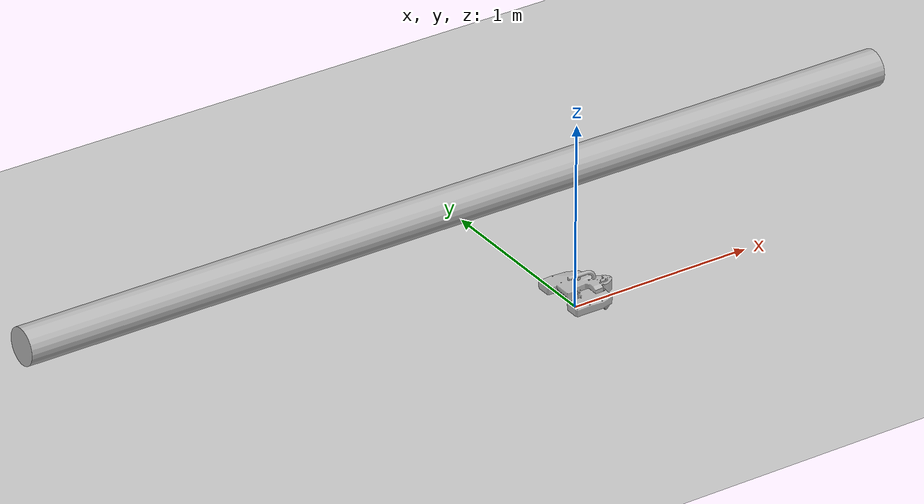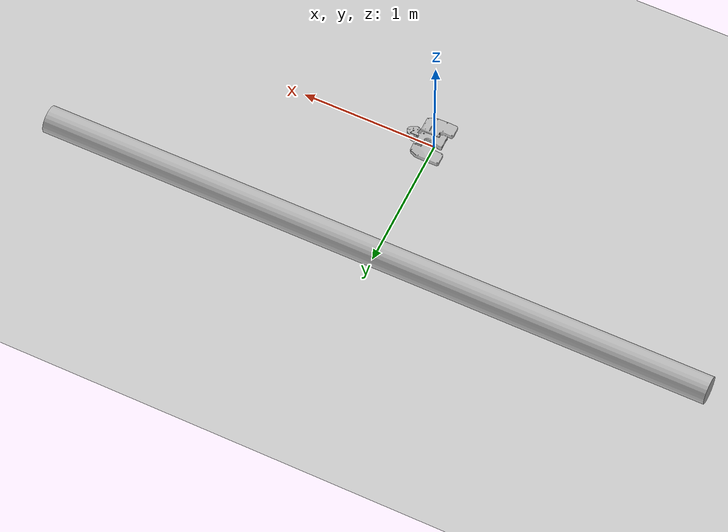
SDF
<?xml version="1.0" ?>
<sdf version="1.5">
  <world name="default">
    <include>
      <uri>model://ground_plane</uri>
    </include>
    <include>
      <uri>model://sun</uri>
    </include>
    <include>
      <uri>model://Crawler</uri>
    </include>
    <include>
      <uri>model://Pipe</uri>
    </include>
  </world>
</sdf>

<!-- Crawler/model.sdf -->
<sdf version='1.4'>
    <model name="crawler">

        <plugin name="gz_crawler_plugin" filename="libcrawler_plugin.so"/>
        <static>false</static>
        <link name='chassis'>
            <pose>0 0 .1 0 0 0</pose>

            <sensor type="camera" name="camera1">
                <pose>0.1 0 0.15 0 0 0</pose>
                <update_rate>5.0</update_rate>
                <camera name="head">
                    <horizontal_fov>1.3962634</horizontal_fov>
                    <image>
                        <width>256</width>
                        <height>256</height>
                        <format>R8G8B8</format>
                    </image>
                    <clip>
                        <near>0.02</near>
                        <far>300</far>
                    </clip>
                    <noise>
                        <type>gaussian</type>
                        <!-- Noise is sampled independently per pixel on each frame.  That pixel's noise value is added to each of its color channels, which at that point lie in the range [0,1]. -->
                        <mean>0.0</mean>
                        <stddev>0.007</stddev>
                    </noise>
                </camera>
                <plugin name="camera_controller" filename="libgazebo_ros_camera.so">
                    <alwaysOn>true</alwaysOn>
                    <updateRate>5.0</updateRate>
                    <robotNamespace></robotNamespace>
                    <cameraName>camera1</cameraName>
                    <imageTopicName>image_raw</imageTopicName>
                    <cameraInfoTopicName>camera_info</cameraInfoTopicName>
                    <frameName>camera_link</frameName>
                    <hackBaseline>0.07</hackBaseline>
                    <distortionK1>0.0</distortionK1>
                    <distortionK2>0.0</distortionK2>
                    <distortionK3>0.0</distortionK3>
                    <distortionT1>0.0</distortionT1>
                    <distortionT2>0.0</distortionT2>
                </plugin>
            </sensor>
            <sensor name="imu_sensor" type="imu">
                <always_on>true</always_on>
                <update_rate>20</update_rate>
                <visualize>true</visualize>
                <topic>__default_topic__</topic>
                <plugin filename="libgazebo_ros_imu_sensor.so" name="imu_plugin">
                    <topicName>imu</topicName>
                    <bodyName>chassis</bodyName>
                    <updateRateHZ>10.0</updateRateHZ>
                    <gaussianNoise>0.0</gaussianNoise>
                    <xyzOffset>0 0 0</xyzOffset>
                    <rpyOffset>0 0 0</rpyOffset>
                    <frameName>chassis</frameName>
                </plugin>
                <pose>0 0 0 0 0 0</pose>
            </sensor>
            <inertial>
                <mass>2.5</mass>
                <inertia>
                    <ixx>10.0</ixx>
                    <ixy>0</ixy>
                    <ixz>0</ixz>
                    <iyy>10.0</iyy>
                    <iyz>0</iyz>
                    <izz>2.5</izz>
                </inertia>
            </inertial>
            <collision name='collision'>
                <geometry>
                    <box>
                        <size>.3 .2 .1</size>
                    </box>
                </geometry>
            </collision>

            <visual name="visual">
                <pose>0.05 0 0  -1.5707 0 -1.5707</pose>
                <geometry>
                    <mesh>
                        <uri>model://Crawler/Altiscan2t.dae</uri>
                    </mesh>
                </geometry>
            </visual>

            <collision name='caster_collision'>
                <pose>-0.15 0 -0.05 0 0 0</pose>
                <geometry>
                    <sphere>
                        <radius>.05</radius>
                    </sphere>
                </geometry>

                <surface>
                    <friction>
                        <ode>
                            <mu>0.01</mu>
                            <mu2>0.01</mu2>
                            <slip1>1.0</slip1>
                            <slip2>1.0</slip2>
                        </ode>
                    </friction>
                    <bounce>
                        <restitution_coefficient>0</restitution_coefficient>
                        <threshold>0</threshold>
                    </bounce>
                    <contact>
                        <ode>
                            <max_vel>0</max_vel>
                            <min_depth>0.005</min_depth>
                        </ode>
                    </contact>
                </surface>
            </collision>

        </link>
        <link name="left_wheel">
            <pose>0.1 0.13 0.1 0 1.5707 1.5707</pose>
            <inertial>
                <mass>0.5</mass>
            </inertial>
            <collision name="collision">
                <geometry>
                    <cylinder>
                        <radius>.1</radius>
                        <length>.05</length>
                    </cylinder>
                </geometry>
                <surface>
                    <friction>
                        <ode>
                            <mu>1</mu>
                            <mu2>1</mu2>
                            <slip1>0.0</slip1>
                            <slip2>0.0</slip2>
                        </ode>
                    </friction>
                    <bounce>
                        <restitution_coefficient>0</restitution_coefficient>
                        <threshold>0</threshold>
                    </bounce>
                    <contact>
                        <ode>
                            <max_vel>0</max_vel>
                            <min_depth>0.005</min_depth>
                        </ode>
                    </contact>
                </surface>
            </collision>
        </link>

        <link name="right_wheel">
            <pose>0.1 -0.13 0.1 0 1.5707 1.5707</pose>
            <inertial>
                <mass>0.5</mass>
            </inertial>
            <collision name="collision">
                <geometry>
                    <cylinder>
                        <radius>.1</radius>
                        <length>.05</length>
                    </cylinder>
                </geometry>
                <surface>
                    <friction>
                        <ode>
                            <mu>1</mu>
                            <mu2>1</mu2>
                            <slip1>0.0</slip1>
                            <slip2>0.0</slip2>
                        </ode>
                    </friction>
                    <bounce>
                        <restitution_coefficient>0</restitution_coefficient>
                        <threshold>0</threshold>
                    </bounce>
                    <contact>
                        <ode>
                            <max_vel>0</max_vel>
                            <min_depth>0.005</min_depth>
                        </ode>
                    </contact>
                </surface>
            </collision>

        </link>
        <joint type="revolute" name="left_wheel_hinge">
            <pose>0 0 -0.03 0 0 0</pose>
            <child>left_wheel</child>
            <parent>chassis</parent>
            <axis>
                <xyz>0 1 0</xyz>
            </axis>
        </joint>

        <joint type="revolute" name="right_wheel_hinge">
            <pose>0 0 0.03 0 0 0</pose>
            <child>right_wheel</child>
            <parent>chassis</parent>
            <axis>
                <xyz>0 1 0</xyz>
            </axis>
        </joint>
        <plugin name="differential_drive_controller" filename="libgazebo_ros_diff_drive.so">
            <alwaysOn>true</alwaysOn>
            <updateRate>20</updateRate>
            <leftJoint>left_wheel_hinge</leftJoint>
            <rightJoint>right_wheel_hinge</rightJoint>
            <wheelSeparation>0.26</wheelSeparation>
            <wheelDiameter>0.1</wheelDiameter>
            <wheelTorque>20</wheelTorque>
            <wheelAcceleration>1.0</wheelAcceleration>
            <commandTopic>cmd_vel</commandTopic>
            <odometryTopic>odom</odometryTopic>
            <odometryFrame>odom</odometryFrame>
            <publishOdomTf>true</publishOdomTf>
            <publishWheelTf>false</publishWheelTf>
            <publishWheelJointState>true</publishWheelJointState>
            <robotBaseFrame>base_link</robotBaseFrame>
	    <legacyMode>false</legacyMode>
        </plugin>

    </model>
</sdf>

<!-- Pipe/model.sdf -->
<sdf version="1.5">
    <model name="Pipe">
      <pose>0 1 .1 0 1.5708 0</pose>
      <static>false</static>
      <link name="Pipe">
        <collision name="collision">
          <geometry>
            <cylinder>
              <radius>0.1</radius>
              <length>5.0</length>
            </cylinder>
          </geometry>
        </collision>
        <visual name="visual">
          <geometry>
            <cylinder>
              <radius>0.1</radius>
              <length>5.0</length>
            </cylinder>
          </geometry>
        </visual>
      </link>
    </model>
</sdf>
